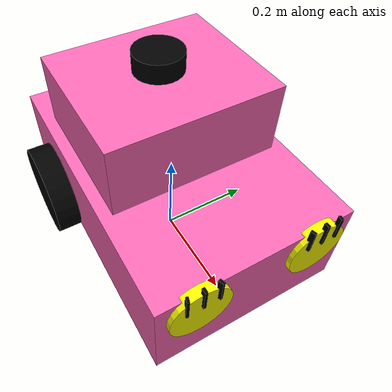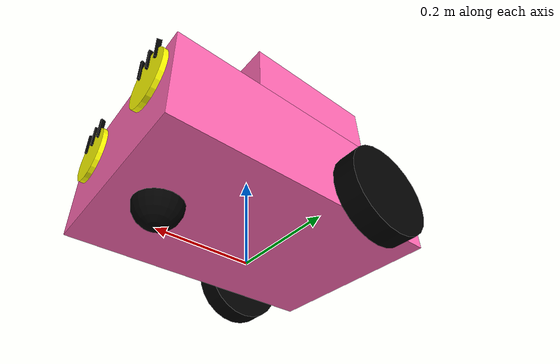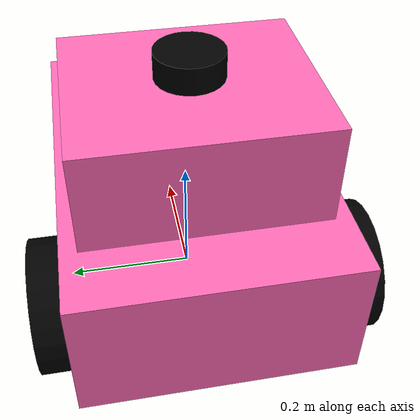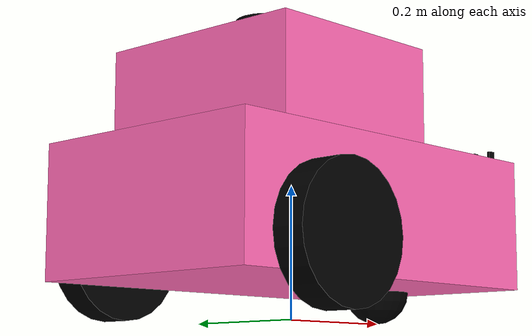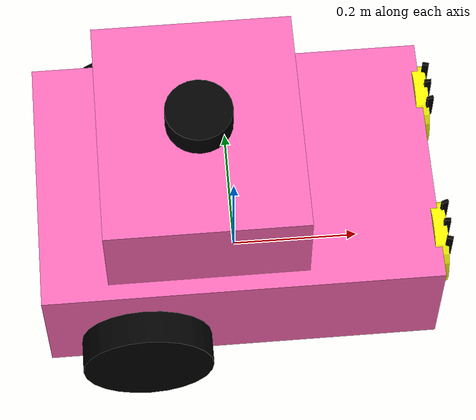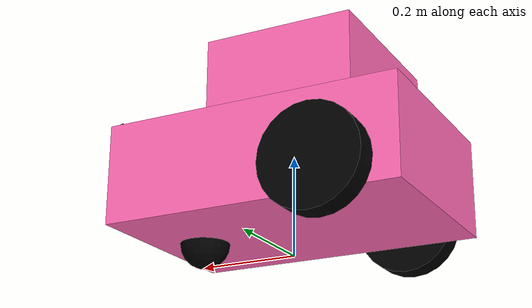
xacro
<?xml version="1.0"?>
<robot xmlns:xacro="http://www.ros.org/wiki/xacro" name="glam_bot_v2">

  <!-- PROPERTIES -->
  <xacro:property name="body_len" value="0.6"/>
  <xacro:property name="body_width" value="0.4"/>
  <xacro:property name="body_height" value="0.2"/>
  <xacro:property name="body_lift" value="0.15"/>

  <xacro:property name="wheel_radius" value="0.1"/>
  <xacro:property name="wheel_len" value="0.05"/>
  <xacro:property name="wheel_offset_x" value="-0.15"/>
  <xacro:property name="wheel_offset_y" value="0.225"/>
  <xacro:property name="wheel_offset_z" value="-0.05"/>

  <!-- MATERIALS -->
  <material name="hot_pink">
    <color rgba="1.0 0.41 0.7 1.0"/>
  </material>
  <material name="black">
    <color rgba="0.0 0.0 0.0 1.0"/>
  </material>
  <material name="yellow">
    <color rgba="1.0 1.0 0.0 1.0"/>
  </material>

  <!-- MACROS -->
  <xacro:macro name="make_wheel" params="prefix reflect">
    <link name="${prefix}_wheel">
      <visual>
        <geometry>
          <cylinder radius="${wheel_radius}" length="${wheel_len}"/>
        </geometry>
        <material name="black"/>
        <origin rpy="1.5708 0 0"/>
      </visual>
      <collision>
        <geometry>
          <cylinder radius="${wheel_radius}" length="${wheel_len}"/>
        </geometry>
        <origin rpy="1.5708 0 0"/>
      </collision>
      <inertial>
        <mass value="2.0"/> <!-- Increased mass for stability -->
        <inertia ixx="0.01" ixy="0.0" ixz="0.0" iyy="0.01" iyz="0.0" izz="0.01"/>
      </inertial>
    </link>

    <joint name="${prefix}_wheel_joint" type="continuous">
      <parent link="body_link"/>
      <child link="${prefix}_wheel"/>
      <origin xyz="${wheel_offset_x} ${reflect * wheel_offset_y} ${wheel_offset_z}" rpy="0 0 0"/>
      <axis xyz="0 1 0"/>
    </joint>
  </xacro:macro>

  <xacro:macro name="make_lash" params="suffix parent y_pos angle">
    <link name="${parent}_lash_${suffix}">
      <visual>
        <geometry> <box size="0.01 0.005 0.05"/> </geometry>
        <material name="black"/>
      </visual>
      <inertial> <mass value="0.001"/> <inertia ixx="0" ixy="0" ixz="0" iyy="0" iyz="0" izz="0"/> </inertial>
    </link>
    <joint name="${parent}_lash_${suffix}_j" type="fixed">
      <parent link="${parent}"/>
      <child link="${parent}_lash_${suffix}"/>
      <origin xyz="0.01 ${y_pos} 0.05" rpy="0 0 ${angle}"/>
    </joint>
  </xacro:macro>

  <xacro:macro name="make_eye" params="prefix reflect">
    <link name="${prefix}_eye">
      <visual>
        <geometry>
          <cylinder radius="0.06" length="0.02"/>
        </geometry>
        <material name="yellow"/>
        <origin rpy="0 1.5708 0"/>
      </visual>
      <inertial>
        <mass value="0.01"/>
        <inertia ixx="0.0001" ixy="0" ixz="0" iyy="0.0001" iyz="0" izz="0.0001"/>
      </inertial>
    </link>
    <joint name="${prefix}_eye_joint" type="fixed">
      <parent link="body_link"/>
      <child link="${prefix}_eye"/>
      <origin xyz="0.3 ${reflect * 0.12} 0.05" rpy="0 0 0"/>
    </joint>
    <xacro:make_lash suffix="1" parent="${prefix}_eye" y_pos="0" angle="0"/>
    <xacro:make_lash suffix="2" parent="${prefix}_eye" y_pos="0.03" angle="${reflect * -0.3}"/>
    <xacro:make_lash suffix="3" parent="${prefix}_eye" y_pos="-0.03" angle="${reflect * 0.3}"/>
  </xacro:macro>

  <!-- ROBOT STRUCTURE -->
  <link name="base_link"/>

  <link name="body_link">
    <visual>
      <geometry> <box size="${body_len} ${body_width} ${body_height}"/> </geometry>
      <material name="hot_pink"/>
    </visual>
    <collision>
      <geometry> <box size="${body_len} ${body_width} ${body_height}"/> </geometry>
    </collision>
    <inertial>
      <mass value="10.0"/> <!-- Heavier body -->
      <inertia ixx="0.5" ixy="0.0" ixz="0.0" iyy="0.5" iyz="0.0" izz="0.5"/>
    </inertial>
  </link>

  <joint name="base_to_body" type="fixed">
    <parent link="base_link"/>
    <child link="body_link"/>
    <origin xyz="0 0 ${body_lift}" rpy="0 0 0"/>
  </joint>

  <link name="cabin_link">
    <visual>
      <geometry> <box size="0.3 0.35 0.15"/> </geometry>
      <material name="hot_pink"/>
    </visual>
    <collision> <geometry> <box size="0.3 0.35 0.15"/> </geometry> </collision>
    <inertial> <mass value="1.0"/> <inertia ixx="0.01" ixy="0.0" ixz="0.0" iyy="0.01" iyz="0.0" izz="0.01"/> </inertial>
  </link>

  <joint name="cabin_joint" type="fixed">
    <parent link="body_link"/>
    <child link="cabin_link"/>
    <origin xyz="-0.05 0 0.175" rpy="0 0 0"/>
  </joint>

  <xacro:make_wheel prefix="left" reflect="1"/>
  <xacro:make_wheel prefix="right" reflect="-1"/>

  <link name="caster_wheel">
    <visual>
      <geometry> <sphere radius="0.05"/> </geometry>
      <material name="black"/>
    </visual>
    <collision> <geometry> <sphere radius="0.05"/> </geometry> </collision>
    <inertial> <mass value="1.0"/> <inertia ixx="0.01" ixy="0.0" ixz="0.0" iyy="0.01" iyz="0.0" izz="0.01"/> </inertial>
  </link>

  <joint name="caster_joint" type="fixed">
    <parent link="body_link"/>
    <child link="caster_wheel"/>
    <origin xyz="0.2 0 -0.1" rpy="0 0 0"/>
  </joint>

  <xacro:make_eye prefix="left" reflect="1"/>
  <xacro:make_eye prefix="right" reflect="-1"/>

  <!-- ================= LIDAR ================= -->
  <link name="lidar_link">
    <visual>
      <geometry>
        <cylinder radius="0.05" length="0.04"/>
      </geometry>
      <material name="black"/>
    </visual>
    <collision>
      <geometry>
        <cylinder radius="0.05" length="0.04"/>
      </geometry>
    </collision>
    <inertial>
      <mass value="0.1"/>
      <inertia ixx="0.0001" ixy="0" ixz="0" iyy="0.0001" iyz="0" izz="0.0001"/>
    </inertial>
  </link>

  <joint name="lidar_joint" type="fixed">
    <parent link="cabin_link"/> <!-- Ставим на крышу кабины -->
    <child link="lidar_link"/>
    <origin xyz="0 0 0.1" rpy="0 0 0"/> <!-- Чуть выше крыши -->
  </joint>

  <xacro:include filename="robot.gazebo.xacro" />

</robot>
